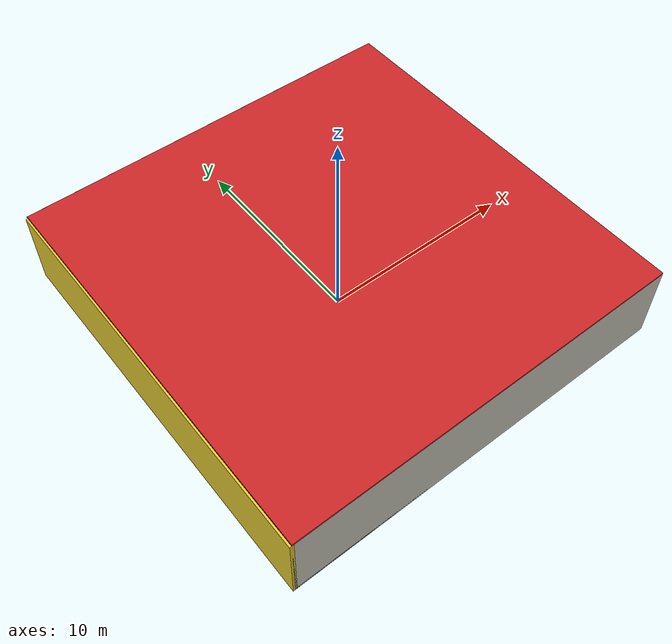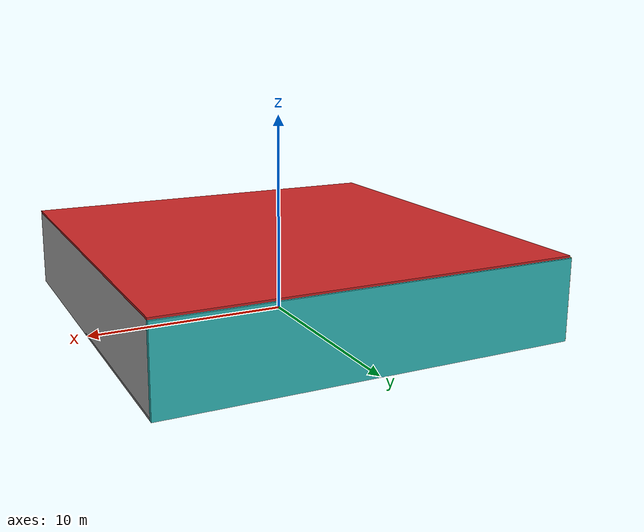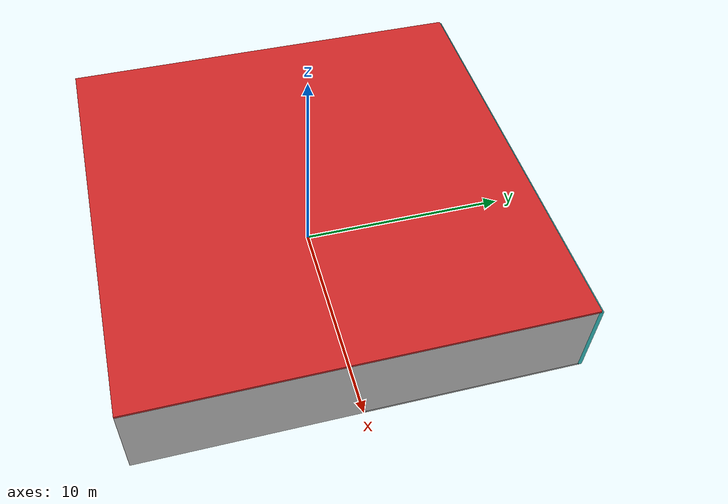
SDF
<sdf version="1.4">
 <world name="default">
  <physics type="ode">
   <max_step_size>0.001</max_step_size>
   <real_time_factor>1</real_time_factor>
   <real_time_update_rate>1000</real_time_update_rate>
   <gravity>0 0 -9.8</gravity>
  </physics>
  <scene><ambient>0.4 0.4 0.4 1</ambient><background>0.7 0.7 0.7 1</background><shadows>1</shadows></scene>
  <model name="Surrounding">
   <static>1</static>
   <link name="Ceiling">
    <collision name="Ceiling_Collision"><geometry><box><size>20 20 0.1</size></box></geometry></collision>
    <visual name="Ceiling_Visual">
     <geometry><box><size>20 20 0.1</size></box></geometry>
     <material>
      <script><uri>file://media/materials/scripts/gazebo.material</uri><name>Gazebo/RedGlow</name></script>
     </material>
    </visual>
    <pose>0 0 4.05 0 0 0</pose>
   </link>
   <link name="Wall_South">
    <collision name="Wall_South_Collision">
     <geometry><box><size>20 0 4</size></box></geometry>
     <pose>0 0 2 0 -0 0</pose>
    </collision>
    <visual name="Wall_South_Visual">
     <pose>0 0 2 0 -0 0</pose>
     <geometry><box><size>20 0 4</size></box></geometry>
     <material>
      <script><uri>file://media/materials/scripts/gazebo.material</uri><name>Gazebo/PaintedWall</name></script>
     </material>
    </visual>
    <velocity_decay><linear>0</linear><angular>0</angular></velocity_decay>
    <pose>0 -10 0 0 -0 0</pose>
   </link>
   <link name="Wall_East">
    <collision name="Wall_21_Collision">
     <geometry><box><size>20 0 4</size></box></geometry>
     <pose>0 0 2 0 -0 0</pose>
    </collision>
    <visual name="Wall_21_Visual">
     <pose>0 0 2 0 -0 0</pose>
     <geometry><box><size>20 0 4</size></box></geometry>
     <material>
      <script><uri>file://media/materials/scripts/gazebo.material</uri><name>Gazebo/Pioneer2Body</name></script>
     </material>
    </visual>
    <velocity_decay><linear>0</linear><angular>0</angular></velocity_decay>
    <pose>10 0 0 0 -0 1.5708</pose>
   </link>
   <link name="Wall_North">
    <collision name="Wall_22_Collision">
     <geometry><box><size>20 0.2 4</size></box></geometry>
     <pose>0 0 2 0 -0 0</pose>
    </collision>
    <visual name="Wall_22_Visual">
     <pose>0 0 2 0 -0 0</pose>
     <geometry><box><size>20 0.2 4</size></box></geometry>
     <material>
      <script><uri>file://media/materials/scripts/gazebo.material</uri><name>Gazebo/Turquoise</name></script>
     </material>
    </visual>
    <velocity_decay><linear>0</linear><angular>0</angular></velocity_decay>
    <pose>0 10 0 0 -0 0</pose>
   </link>
   <link name="Wall_West">
    <collision name="Wall_23_Collision">
     <geometry><box><size>20 0.2 4</size></box></geometry>
     <pose>0 0 2 0 -0 0</pose>
    </collision>
    <visual name="Wall_23_Visual">
     <pose>0 0 2 0 -0 0</pose>
     <geometry><box><size>20 0.2 4</size></box></geometry>
     <material>
      <script><uri>file://media/materials/scripts/gazebo.material</uri><name>Gazebo/ZincYellow</name></script>
     </material>
    </visual>
    <velocity_decay><linear>0</linear><angular>0</angular></velocity_decay>
    <pose>-10 0 0 0 0 -1.5708</pose>
   </link>
   <link name="Ground_link">
    <collision name="collision">
     <pose>0 0 .05 0 -0 0</pose>
     <geometry><box><size>20 20 0.1</size></box></geometry>
    </collision>
    <visual name="visual">
     <pose>0 0 .05 0 -0 0</pose>
     <geometry><box><size>20 20 0.1</size></box></geometry>
     <material>
      <script><uri>file://media/materials/scripts/gazebo.material</uri><name>Gazebo/GreyTransparent</name></script>
     </material>
    </visual>
   </link>
   <static>1</static>
  </model>
  <spherical_coordinates>
   <surface_model>EARTH_WGS84</surface_model>
   <latitude_deg>0</latitude_deg>
   <longitude_deg>0</longitude_deg>
   <elevation>0</elevation>
   <heading_deg>0</heading_deg>
  </spherical_coordinates>
  <light name="lightball_0" type="diffuse">
   <diffuse>0.8 0.8 0.8 1</diffuse>
   <specular>0.2 0.2 0.2 1</specular>
   <attenuation>
    <range>100</range>
    <constant>0.7</constant>
    <linear>0.01</linear>
    <quadratic>0.001</quadratic>
   </attenuation>
   <direction>-0.5 0.1 -0.9</direction>
   <pose>5.41510588117 -3.43456620182 2.30406763574 0 0 0</pose>
  </light>
  <light name="lightball_1" type="diffuse">
   <diffuse>0.8 0.8 0.8 1</diffuse>
   <specular>0.2 0.2 0.2 1</specular>
   <attenuation>
    <range>100</range>
    <constant>0.7</constant>
    <linear>0.01</linear>
    <quadratic>0.001</quadratic>
   </attenuation>
   <direction>-0.5 0.1 -0.9</direction>
   <pose>1.22119366072 -4.07012284468 3.40895581097 0 0 0</pose>
  </light>
  <light name="lightball_2" type="diffuse">
   <diffuse>0.8 0.8 0.8 1</diffuse>
   <specular>0.2 0.2 0.2 1</specular>
   <attenuation>
    <range>100</range>
    <constant>0.7</constant>
    <linear>0.01</linear>
    <quadratic>0.001</quadratic>
   </attenuation>
   <direction>-0.5 0.1 -0.9</direction>
   <pose>-3.51462610369 9.18915103632 3.57587242356 0 0 0</pose>
  </light>
  <light name="lightball_3" type="diffuse">
   <diffuse>0.8 0.8 0.8 1</diffuse>
   <specular>0.2 0.2 0.2 1</specular>
   <attenuation>
    <range>100</range>
    <constant>0.7</constant>
    <linear>0.01</linear>
    <quadratic>0.001</quadratic>
   </attenuation>
   <direction>-0.5 0.1 -0.9</direction>
   <pose>4.51817918299 -8.06343192066 0.917505846647 0 0 0</pose>
  </light>
  <light name="lightball_4" type="diffuse">
   <diffuse>0.8 0.8 0.8 1</diffuse>
   <specular>0.2 0.2 0.2 1</specular>
   <attenuation>
    <range>100</range>
    <constant>0.7</constant>
    <linear>0.01</linear>
    <quadratic>0.001</quadratic>
   </attenuation>
   <direction>-0.5 0.1 -0.9</direction>
   <pose>-3.52577189185 4.69758859295 3.03771149262 0 0 0</pose>
  </light>
  <include>
   <uri>model://robocup_3Dsim_goal</uri>
   <pose>-6.78119102709 -1.51095452484 0 0 0 1.19266793915</pose>
  </include>
  <include><uri>model://cabinet</uri><pose>3.83794958077 -1.20794611242 0 0 0 2.69656795759</pose></include>
  <include>
   <uri>model://robocup_3Dsim_goal</uri>
   <pose>5.15716207057 1.45473041181 0 0 0 2.78197611445</pose>
  </include>
 </world>
</sdf>

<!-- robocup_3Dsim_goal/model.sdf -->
<sdf version="1.5">
  <model name="robocup_3d_goal">
    <static>true</static>
    <link name="left_post">
      <pose>0 1.05 0.45 0 0 0</pose>
      <collision name="collision">
        <geometry>
          <cylinder>
            <radius>0.05</radius>
            <length>0.9</length>
          </cylinder>
        </geometry>
      </collision>
      <visual name="visual">
        <geometry>
          <cylinder>
            <radius>0.05</radius>
            <length>0.9</length>
          </cylinder>
        </geometry>
        <material>
          <script>
            <uri>file://media/materials/scripts/gazebo.material</uri>
            <name>Gazebo/ZincYellow</name>
          </script>
        </material>
      </visual>
    </link>
    <link name="left_support_horiz_lower">
      <pose>0.30 1.05 0.01 0 0 0</pose>
      <collision name="collision">
        <geometry>
          <box>
            <size>0.50 0.02 0.02</size>
          </box>
        </geometry>
      </collision>
      <visual name="visual">
        <geometry>
          <box>
            <size>0.50 0.02 0.02</size>
          </box>
        </geometry>
        <material>
          <script>
            <uri>file://media/materials/scripts/gazebo.material</uri>
            <name>Gazebo/White</name>
          </script>
        </material>
      </visual>
    </link>
    <link name="left_support_horiz_upper">
      <pose>0.30 1.05 0.79 0 0 0</pose>
      <collision name="collision">
        <geometry>
          <box>
            <size>0.50 0.02 0.02</size>
          </box>
        </geometry>
      </collision>
      <visual name="visual">
        <geometry>
          <box>
            <size>0.50 0.02 0.02</size>
          </box>
        </geometry>
        <material>
          <script>
            <uri>file://media/materials/scripts/gazebo.material</uri>
            <name>Gazebo/White</name>
          </script>
        </material>
      </visual>
    </link>
    <link name="left_support_vertical">
      <pose>0.56 1.05 0.4 0 1.5708 0</pose>
      <collision name="collision">
        <geometry>
          <box>
            <size>0.80 0.02 0.02</size>
          </box>
        </geometry>
      </collision>
      <visual name="visual">
        <geometry>
          <box>
            <size>0.80 0.02 0.02</size>
          </box>
        </geometry>
        <material>
          <script>
            <uri>file://media/materials/scripts/gazebo.material</uri>
            <name>Gazebo/White</name>
          </script>
        </material>
      </visual>
    </link>
    <link name="right_support_horiz_lower">
      <pose>0.30 -1.05 0.01 0 0 0</pose>
      <collision name="collision">
        <geometry>
          <box>
            <size>0.50 0.02 0.02</size>
          </box>
        </geometry>
      </collision>
      <visual name="visual">
        <geometry>
          <box>
            <size>0.50 0.02 0.02</size>
          </box>
        </geometry>
        <material>
          <script>
            <uri>file://media/materials/scripts/gazebo.material</uri>
            <name>Gazebo/White</name>
          </script>
        </material>
      </visual>
    </link>
    <link name="right_support_horiz_upper">
      <pose>0.30 -1.05 0.79 0 0 0</pose>
      <collision name="collision">
        <geometry>
          <box>
            <size>0.50 0.02 0.02</size>
          </box>
        </geometry>
      </collision>
      <visual name="visual">
        <geometry>
          <box>
            <size>0.50 0.02 0.02</size>
          </box>
        </geometry>
        <material>
          <script>
            <uri>file://media/materials/scripts/gazebo.material</uri>
            <name>Gazebo/White</name>
          </script>
        </material>
      </visual>
    </link>
    <link name="right_support_vertical">
      <pose>0.56 -1.05 0.4 0 1.5708 0</pose>
      <collision name="collision">
        <geometry>
          <box>
            <size>0.80 0.02 0.02</size>
          </box>
        </geometry>
      </collision>
      <visual name="visual">
        <geometry>
          <box>
            <size>0.80 0.02 0.02</size>
          </box>
        </geometry>
        <material>
          <script>
            <uri>file://media/materials/scripts/gazebo.material</uri>
            <name>Gazebo/White</name>
          </script>
        </material>
      </visual>
    </link>
    <link name="center_support_horiz_lower">
      <pose>0.56 0 0.01 0 1.5708 0</pose>
      <collision name="collision">
        <geometry>
          <box>
            <size>0.02 2.08 0.02</size>
          </box>
        </geometry>
      </collision>
      <visual name="visual">
        <geometry>
          <box>
            <size>0.02 2.08 0.02</size>
          </box>
        </geometry>
        <material>
          <script>
            <uri>file://media/materials/scripts/gazebo.material</uri>
            <name>Gazebo/White</name>
          </script>
        </material>
      </visual>
    </link>
    <link name="center_support_horiz_upper">
      <pose>0.56 0 0.79 0 1.5708 0</pose>
      <collision name="collision">
        <geometry>
          <box>
            <size>0.02 2.08 0.02</size>
          </box>
        </geometry>
      </collision>
      <visual name="visual">
        <geometry>
          <box>
            <size>0.02 2.08 0.02</size>
          </box>
        </geometry>
        <material>
          <script>
            <uri>file://media/materials/scripts/gazebo.material</uri>
            <name>Gazebo/White</name>
          </script>
        </material>
      </visual>
    </link>
    <link name="right_post">
      <pose>0 -1.05 0.45 0 0 0</pose>
      <collision name="collision">
        <geometry>
          <cylinder>
            <radius>0.05</radius>
            <length>0.9</length>
          </cylinder>
        </geometry>
      </collision>
      <visual name="visual">
        <geometry>
          <cylinder>
            <radius>0.05</radius>
            <length>0.9</length>
          </cylinder>
        </geometry>
        <material>
          <script>
            <uri>file://media/materials/scripts/gazebo.material</uri>
            <name>Gazebo/ZincYellow</name>
          </script>
        </material>
      </visual>
    </link>
    <link name="crossbar">
      <pose>0 0 0.85 1.57 1.57 0</pose>
      <collision name="collision">
        <geometry>
          <cylinder>
            <radius>0.05</radius>
            <length>2.0</length>
          </cylinder>
        </geometry>
      </collision>
      <visual name="visual">
        <geometry>
          <cylinder>
            <radius>0.05</radius>
            <length>2.0</length>
          </cylinder>
        </geometry>
        <material>
          <script>
            <uri>file://media/materials/scripts/gazebo.material</uri>
            <name>Gazebo/ZincYellow</name>
          </script>
        </material>
      </visual>
    </link>
    <link name="center_net">
      <pose>0.56 0 0.40 0 0 0</pose>
      <collision name="collision">
        <geometry>
          <box>
            <size>0.01 2.1 0.80</size>
          </box>
        </geometry>
      </collision>
      <visual name="visual">
        <geometry>
          <box>
            <size>0.01 2.1 0.80</size>
          </box>
        </geometry>
        <material>
          <script>
            <uri>model://../model_source/models/robocup09_spl_field/materials/scripts/</uri>
            <uri>model://../model_source/models/robocup09_spl_field/materials/textures/</uri>
            <name>RoboCup/Net</name>
          </script>
        </material>
      </visual>
    </link>
    <link name="left_net">
      <pose>0.30 1.05 0.40 0 0 0</pose>
      <collision name="collision">
        <geometry>
          <box>
            <size>0.50 0.01 0.76</size>
          </box>
        </geometry>
      </collision>
      <visual name="visual">
        <geometry>
          <box>
            <size>0.50 0.01 0.76</size>
          </box>
        </geometry>
        <material>
          <script>
            <uri>model://../model_source/models/robocup09_spl_field/materials/scripts/</uri>
            <uri>model://../model_source/models/robocup09_spl_field/materials/textures/</uri>
            <name>RoboCup/Net</name>
          </script>
        </material>
      </visual>
    </link>
    <link name="right_net">
      <pose>0.30 -1.05 0.40 0 0 0</pose>
      <collision name="collision">
        <geometry>
          <box>
            <size>0.50 0.01 0.76</size>
          </box>
        </geometry>
      </collision>
      <visual name="visual">
        <geometry>
          <box>
            <size>0.50 0.01 0.76</size>
          </box>
        </geometry>
        <material>
          <script>
            <uri>model://../model_source/models/robocup09_spl_field/materials/scripts/</uri>
            <uri>model://../model_source/models/robocup09_spl_field/materials/textures/</uri>
            <name>RoboCup/Net</name>
          </script>
        </material>
      </visual>
    </link>
  </model>
</sdf>

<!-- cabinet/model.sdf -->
<sdf version="1.5">
  <model name="cabinet">
    <static>true</static>
    <link name="cabinet_bottom_plate">
      <inertial>
        <pose>0 0 -1 0 0 0</pose>
        <inertia>
          <ixx>2.050000</ixx>
          <ixy>0</ixy>
          <ixz>0</ixz>
          <iyy>2.050000</iyy>
          <iyz>0</iyz>
          <izz>2.050000</izz>
        </inertia>
        <mass>25.000000</mass>
      </inertial>
      <collision name="cabinet_bottom_plate_geom">
        <pose>0 0 0.010000 0 0 0</pose>
        <geometry>
          <box>
            <size>0.450000 0.450000 0.020000</size>
          </box>
        </geometry>
      </collision>
      <visual name="cabinet_bottom_plate_geom_visual">
        <pose>0 0 0.010000 0 0 0</pose>
        <geometry>
          <box>
            <size>0.450000 0.450000 0.020000</size>
          </box>
        </geometry>
        <material>
          <script>
            <uri>model://media/materials/scripts/gazebo.material</uri>
            <name>Gazebo/Wood</name>
          </script>
        </material>
      </visual>
      <collision name="cabinet_bottom_plate_geom_cabinet_back_plate">
        <pose>0.235000 0 0.510000 0 0 0</pose>
        <geometry>
          <box>
            <size>0.020000 0.450000 1.020000</size>
          </box>
        </geometry>
      </collision>
      <visual name="cabinet_bottom_plate_geom_cabinet_back_plate_visual">
        <pose>0.235000 0 0.510000 0 0 0</pose>
        <geometry>
          <box>
            <size>0.020000 0.450000 1.020000</size>
          </box>
        </geometry>
        <material>
          <script>
            <uri>model://media/materials/scripts/gazebo.material</uri>
            <name>Gazebo/Wood</name>
          </script>
        </material>
      </visual>
      <collision name="cabinet_bottom_plate_geom_cabinet_left_plate">
        <pose>0 0.235000 0.510000 0 0 0</pose>
        <geometry>
          <box>
            <size>0.450000 0.020000 1.020000</size>
          </box>
        </geometry>
      </collision>
      <visual name="cabinet_bottom_plate_geom_cabinet_left_plate_visual">
        <pose>0 0.235000 0.510000 0 0 0</pose>
        <geometry>
          <box>
            <size>0.450000 0.020000 1.020000</size>
          </box>
        </geometry>
        <material>
          <script>
            <uri>model://media/materials/scripts/gazebo.material</uri>
            <name>Gazebo/Wood</name>
          </script>
        </material>
      </visual>
      <collision name="cabinet_bottom_plate_geom_cabinet_middle_plate">
        <pose>0 0 0.510000 0 0 0</pose>
        <geometry>
          <box>
            <size>0.450000 0.450000 0.020000</size>
          </box>
        </geometry>
      </collision>
      <visual name="cabinet_bottom_plate_geom_cabinet_middle_plate_visual">
        <pose>0 0 0.510000 0 0 0</pose>
        <geometry>
          <box>
            <size>0.450000 0.450000 0.020000</size>
          </box>
        </geometry>
        <material>
          <script>
            <uri>model://media/materials/scripts/gazebo.material</uri>
            <name>Gazebo/Wood</name>
          </script>
        </material>
      </visual>
      <collision name="cabinet_bottom_plate_geom_cabinet_right_plate">
        <pose>0 -0.235000 0.510000 0 0 0</pose>
        <geometry>
          <box>
            <size>0.450000 0.020000 1.020000</size>
          </box>
        </geometry>
      </collision>
      <visual name="cabinet_bottom_plate_geom_cabinet_right_plate_visual">
        <pose>0 -0.235000 0.510000 0 0 0</pose>
        <geometry>
          <box>
            <size>0.450000 0.020000 1.020000</size>
          </box>
        </geometry>
        <material>
          <script>
            <uri>model://media/materials/scripts/gazebo.material</uri>
            <name>Gazebo/Wood</name>
          </script>
        </material>
      </visual>
      <collision name="cabinet_bottom_plate_geom_cabinet_top_plate">
        <pose>0 0 1.010000 0 0 0</pose>
        <geometry>
          <box>
            <size>0.450000 0.450000 0.020000</size>
          </box>
        </geometry>
      </collision>
      <visual name="cabinet_bottom_plate_geom_cabinet_top_plate_visual">
        <pose>0 0 1.010000 0 0 0</pose>
        <geometry>
          <box>
            <size>0.450000 0.450000 0.020000</size>
          </box>
        </geometry>
        <material>
          <script>
            <uri>model://media/materials/scripts/gazebo.material</uri>
            <name>Gazebo/Wood</name>
          </script>
        </material>
      </visual>
    </link>
  </model>
</sdf>
